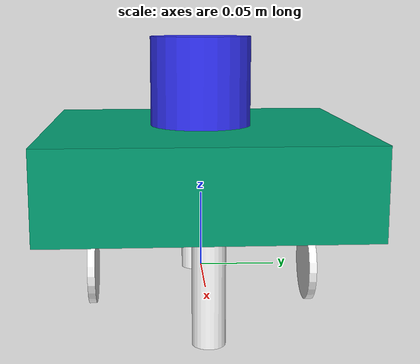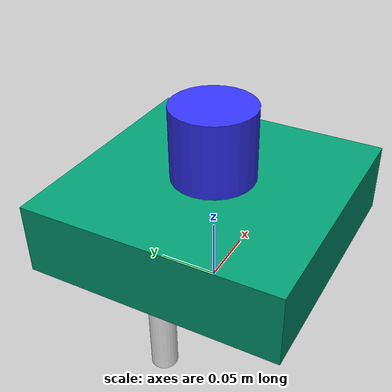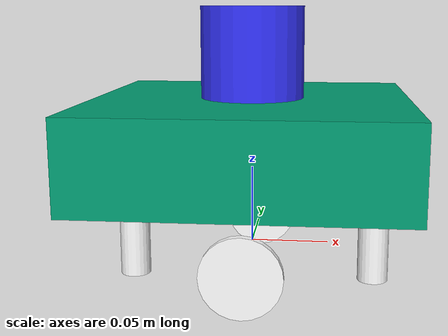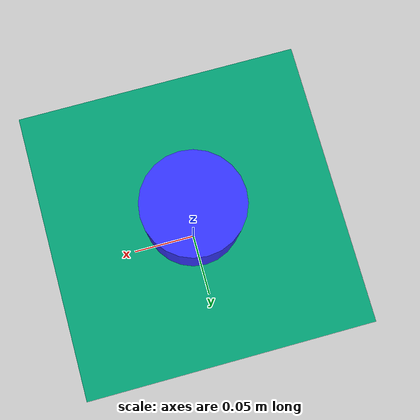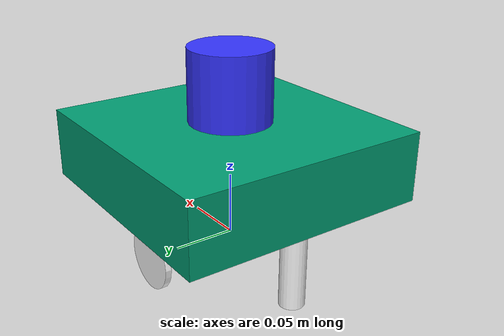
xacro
<?xml version="1.0"?>
<robot xmlns:xacro="http://www.ros.org/wiki/xacro"  name="robot">

    <xacro:arg name="use_ros2_control" default="true"/>
    <xacro:arg name="sim_mode" default="false"/>

    <xacro:include filename="robot_core.xacro" />

    <xacro:if value="$(arg use_ros2_control)">
        <xacro:include filename="ros2_control.xacro" />
    </xacro:if>
    <xacro:unless value="$(arg use_ros2_control)">
        <xacro:include filename="gazebo_control.xacro" />
    </xacro:unless>

    <xacro:include filename="lidar.xacro" />
    <xacro:include filename="imu.xacro" />

</robot>

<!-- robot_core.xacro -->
<robot xmlns:xacro="http://www.ros.org/wiki/xacro">

    <xacro:property name="motor_wheel_diameter" value="0.050"/>
    <xacro:property name="motor_wheel_width" value="0.005"/>
    <xacro:property name="motor_wheel_separation" value="0.146"/> <!--center to center-->

    <xacro:property name="chassis_base_height" value="0.065"/>
    <xacro:property name="chassis_width" value="0.200"/>
    <xacro:property name="chassis_length" value="0.200"/>
    <xacro:property name="chassis_height" value="0.056"/>

    <material name="blue">
        <color rgba="0.2 0.2 1 1"/>
    </material>

    <material name="white">
        <color rgba="1 1 1 1"/>
    </material>

    <material name="grey">
        <color rgba="0.2 0.2 0.2 1"/>
    </material>

    <material name="brown">
        <color rgba="0.5 0.2 0 1"/>
    </material>

    <link name="base_link"></link>

    <joint name="synthetic_mass_joint" type="fixed">
        <parent link="base_link"/>
        <child link="synthetic_mass"/>
        <origin xyz="0 0 0" rpy="0 0 0"/>
    </joint>

    <link name="synthetic_mass">
        <inertial>
            <mass value="1.0"/>
            <origin xyz="0.0 0.0 0.025" rpy="0.0 0.0 0.0"/>
            <inertia ixx="0.0007" ixy="0.0" ixz="0.0" iyy="0.0007" iyz="0.0" izz="0.0008"/>
        </inertial>
    </link>

    <!-- CHASSIS -->

    <joint name="chassis_joint" type="fixed">
        <parent link="base_link"/>
        <child link="chassis"/>
        <origin xyz="0 0 ${chassis_base_height - motor_wheel_diameter/2 + chassis_height/2}"/>
    </joint>

    <link name="chassis">
        <visual>
            <geometry>
                <box size="${chassis_length} ${chassis_width} ${chassis_height}"/>
                <material name="brown"/>
            </geometry>
        </visual>
        <collision>
            <geometry>
                <box size="${chassis_length} ${chassis_width} ${chassis_height}"/>
            </geometry>
        </collision>
    </link>

    <!-- MOTOR WHEELS -->

    <joint name="left_wheel_joint" type="continuous">
        <parent link="base_link"/>
        <child link="motor_left_wheel"/>
        <origin xyz="0 ${motor_wheel_separation/2} 0" rpy="-${pi/2} 0 0"/>
        <axis xyz="0 0 1"/>
    </joint>

    <link name="motor_left_wheel">
        <visual>
            <geometry>
                <cylinder radius="${motor_wheel_diameter/2}" length="${motor_wheel_width}"/>
            </geometry>
            <material name="white"/>
        </visual>
        <collision>
            <geometry>
                <cylinder radius="${motor_wheel_diameter/2}" length="${motor_wheel_width}"/>
            </geometry>
        </collision>
        <inertial>
            <mass value="0.1"/>
            <origin xyz="0.0 0.0 0.01" rpy="0.0 0.0 0.0"/>
            <inertia ixx="0.00007" ixy="0.0" ixz="0.0" iyy="0.00007" iyz="0.0" izz="0.00008"/>
        </inertial>
    </link>

    <joint name="right_wheel_joint" type="continuous">
        <parent link="base_link"/>
        <child link="motor_right_wheel"/>
        <origin xyz="0 -${motor_wheel_separation/2} 0" rpy="${pi/2} 0 0"/>
        <axis xyz="0 0 -1"/>
    </joint>

    <link name="motor_right_wheel">
        <visual>
            <geometry>
                <cylinder radius="${motor_wheel_diameter/2}" length="${motor_wheel_width}"/>
            </geometry>
            <material name="white"/>
        </visual>
        <collision>
            <geometry>
                <cylinder radius="${motor_wheel_diameter/2}" length="${motor_wheel_width}"/>
            </geometry>
        </collision>
        <inertial>
            <mass value="0.1"/>
            <origin xyz="0.0 0.0 0.01" rpy="0.0 0.0 0.0"/>
            <inertia ixx="0.00007" ixy="0.0" ixz="0.0" iyy="0.00007" iyz="0.0" izz="0.00008"/>
        </inertial>
    </link>

    <!-- CASTER WHEELS -->

    <joint name="front_caster_wheel_joint" type="fixed">
        <parent link="base_link"/>
        <child link="front_caster_wheel"/>
        <origin xyz="0.080 0 ${chassis_base_height/2 - motor_wheel_diameter/2}" rpy="${pi} 0 0"/>
    </joint>

    <link name="front_caster_wheel">
        <visual>
            <geometry>
                <cylinder radius="0.01" length="${chassis_base_height}"/>
            </geometry>
            <material name="white"/>
        </visual>
        <collision>
            <geometry>
                <cylinder radius="0.01" length="${chassis_base_height-0.002}"/>
            </geometry>
        </collision>
    </link>

    <gazebo reference="front_caster_wheel">
        <material>Gazebo/Grey</material>
        <mu1 value="0.001"/>
        <mu2 value="0.001"/>
    </gazebo>

    <joint name="back_caster_wheel_joint" type="fixed">
        <parent link="base_link"/>
        <child link="back_caster_wheel"/>
        <origin xyz="-0.080 0 ${chassis_base_height/2 - motor_wheel_diameter/2}" rpy="0 0 0"/>
    </joint>

    <link name="back_caster_wheel">
        <visual>
            <geometry>
                <cylinder radius="0.01" length="${chassis_base_height}"/>
            </geometry>
            <material name="white"/>
        </visual>
        <collision>
            <geometry>
                <cylinder radius="0.01" length="${chassis_base_height-0.002}"/>
            </geometry>
        </collision>
    </link>

    <gazebo reference="back_caster_wheel">
        <material>Gazebo/Grey</material>
        <mu1 value="0.001"/>
        <mu2 value="0.001"/>
    </gazebo>

</robot>

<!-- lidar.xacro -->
<robot name="robot">
        <!-- LIDAR -->

    <joint name="lidar_joint" type="fixed">
        <parent link="base_link"/>
        <child link="lidar"/>
        <origin xyz="0 0 ${(0.058/2)+0.056+0.040}" rpy="0 0 0"/>
    </joint>

    <link name="lidar">
        <visual>
            <geometry>
                <cylinder radius="0.033" length="0.058"/>
            </geometry>
            <material name="blue"/>
        </visual>
        <collision>
            <geometry>
                <cylinder radius="0.033" length="0.058"/>
            </geometry>
        </collision>
    </link>

    <joint name="laser_joint" type="fixed">
        <parent link="base_link"/>
        <child link="laser_frame"/>
        <origin xyz="0 0 ${0.042+0.056+0.040}" rpy="0 0 0"/>
    </joint>

    <link name="laser_frame">

    </link>

    <gazebo reference="laser_frame">
        <sensor name="laser" type="ray">
            <pose> 0 0 0 0 0 0 </pose>
            <visualize>true</visualize>
            <update_rate>7</update_rate>
            <ray>
                <scan>
                    <horizontal>
                        <samples>540</samples>
                        <min_angle>-3.14</min_angle>
                        <max_angle>3.14</max_angle>
                    </horizontal>
                </scan>
                <range>
                    <min>0.2</min>
                    <max>6</max>
                </range>
                <noise>
                    <!-- Use gaussian noise -->
                    <type>gaussian</type>
                    <mean>0.0</mean>
                    <stddev>0.005</stddev>
                </noise>
            </ray>
            <plugin name="laser_controller" filename="libgazebo_ros_ray_sensor.so">
                <ros>
                    <argument>~/out:=scan</argument>
                </ros>
                <output_type>sensor_msgs/LaserScan</output_type>
                <frame_name>laser_frame</frame_name>
            </plugin>
        </sensor>
    </gazebo>

</robot>

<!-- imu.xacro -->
<robot name="robot">

    <joint name="imu_joint" type="fixed">
        <parent link="base_link"/>
        <child link="imu_frame"/>
        <origin xyz="0 0 0" rpy="0 0 0"/>
    </joint>

    <link name="imu_frame">

    </link>

    <gazebo reference="imu_frame">
        <gravity>true</gravity>
        <sensor name="imu_sensor" type="imu">

            <always_on>true</always_on>
            <update_rate>100</update_rate>
            <visualize>true</visualize>
            <topic>__default_topic__</topic>

            <plugin filename="libgazebo_ros_imu_sensor.so" name="imu_plugin">
                <topicName>imu</topicName>
                <bodyName>imu_link</bodyName>
                <updateRateHZ>100.0</updateRateHZ>
                <gaussianNoise>0.0</gaussianNoise>
                <xyzOffset>0 0 0</xyzOffset>
                <rpyOffset>0 0 0</rpyOffset>
                <frameName>imu_frame</frameName>
                <initialOrientationAsReference>false</initialOrientationAsReference>
            </plugin>

            <pose>0 0 0 0 0 0</pose>

        </sensor>
    </gazebo>

</robot>
